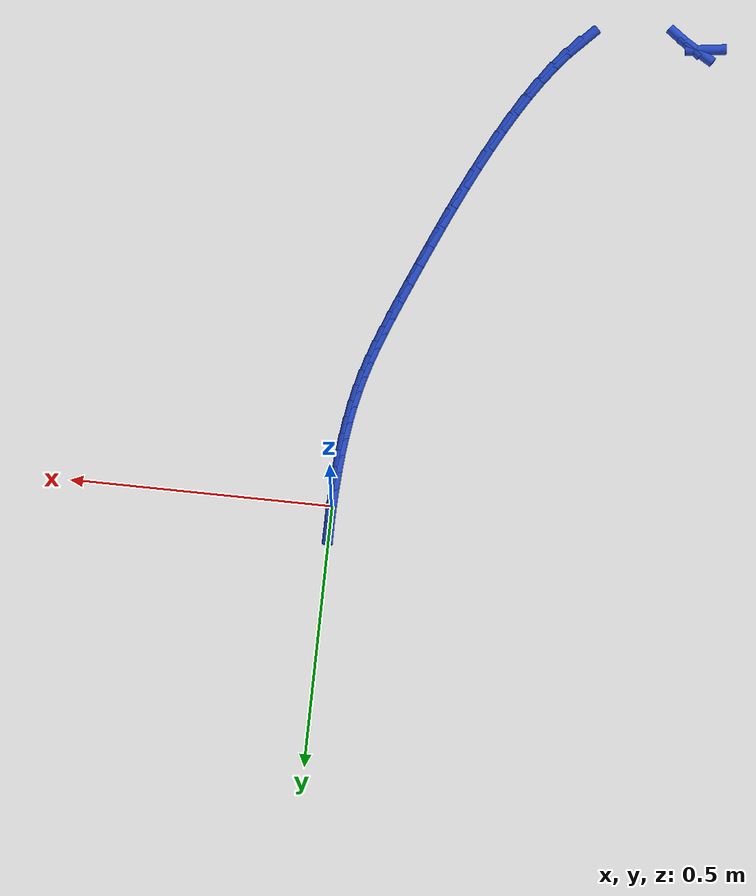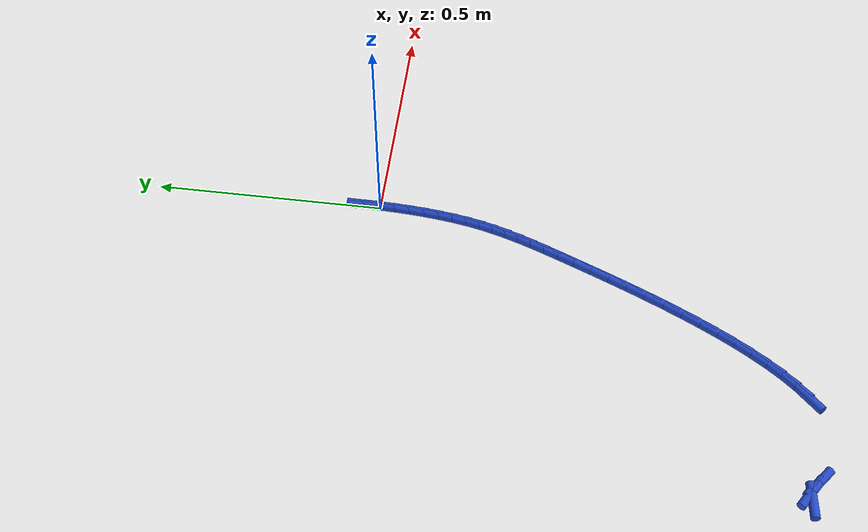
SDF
<sdf version="1.6">
 <world name="default">
  <model name="ground_plane">
   <static>1</static>
   <link name="link">
    <collision name="collision">
     <geometry><plane><normal>0 0 1</normal><size>100 100</size></plane></geometry>
     <surface><friction><ode><mu>100</mu><mu2>50</mu2></ode></friction></surface>
    </collision>
    <visual name="visual">
     <cast_shadows>0</cast_shadows>
     <geometry><plane><normal>0 0 1</normal><size>100 100</size></plane></geometry>
     <material>
      <script><uri>file://media/materials/scripts/gazebo.material</uri><name>Gazebo/WhiteGlow</name></script>
     </material>
    </visual>
   </link>
  </model>
  <model name="line">
   <link name="link_0">
    <pose>1.235990476633475e-17 6.938893903907228e-18 0.01 0 1.57 1.551171757758314</pose>
    <collision name="collision">
     <geometry><cylinder><radius>0.01</radius><length>0.08</length></cylinder></geometry>
    </collision>
    <visual name="visual">
     <material>
      <script><name>Gazebo/Blue</name><uri>file://media/materials/scripts/gazebo.material</uri></script>
     </material>
     <geometry><cylinder><radius>0.01</radius><length>0.08</length></cylinder></geometry>
    </visual>
   </link>
   <link name="link_1">
    <pose>0.0006745324023107896 0.034367420044899434 0.01 0 1.57 -1.5639240911768244</pose>
    <collision name="collision">
     <geometry><cylinder><radius>0.01</radius><length>0.08</length></cylinder></geometry>
    </collision>
    <visual name="visual">
     <material>
      <script><name>Gazebo/Blue</name><uri>file://media/materials/scripts/gazebo.material</uri></script>
     </material>
     <geometry><cylinder><radius>0.01</radius><length>0.08</length></cylinder></geometry>
    </visual>
   </link>
   <link name="link_242">
    <pose>-0.6226002115431525 -0.9555428469958014 0.01 0 1.57 0.13597110070251084</pose>
    <collision name="collision">
     <geometry><cylinder><radius>0.01</radius><length>0.08</length></cylinder></geometry>
    </collision>
    <visual name="visual">
     <material>
      <script><name>Gazebo/Blue</name><uri>file://media/materials/scripts/gazebo.material</uri></script>
     </material>
     <geometry><cylinder><radius>0.01</radius><length>0.08</length></cylinder></geometry>
    </visual>
   </link>
   <link name="link_243">
    <pose>-0.6044496044013559 -0.953059566321407 0.01 0 1.57 -0.5450933979554599</pose>
    <collision name="collision">
     <geometry><cylinder><radius>0.01</radius><length>0.08</length></cylinder></geometry>
    </collision>
    <visual name="visual">
     <material>
      <script><name>Gazebo/Blue</name><uri>file://media/materials/scripts/gazebo.material</uri></script>
     </material>
     <geometry><cylinder><radius>0.01</radius><length>0.08</length></cylinder></geometry>
    </visual>
   </link>
   <link name="link_244">
    <pose>-0.5818548450732716 -0.9667604504788027 0.01 0 1.57 -0.63791894159661</pose>
    <collision name="collision">
     <geometry><cylinder><radius>0.01</radius><length>0.08</length></cylinder></geometry>
    </collision>
    <visual name="visual">
     <material>
      <script><name>Gazebo/Blue</name><uri>file://media/materials/scripts/gazebo.material</uri></script>
     </material>
     <geometry><cylinder><radius>0.01</radius><length>0.08</length></cylinder></geometry>
    </visual>
   </link>
   <link name="link_252">
    <pose>-0.38383424432784324 -0.946251941171328 0.01 0 1.57 0.8018744424700996</pose>
    <collision name="collision">
     <geometry><cylinder><radius>0.01</radius><length>0.08</length></cylinder></geometry>
    </collision>
    <visual name="visual">
     <material>
      <script><name>Gazebo/Blue</name><uri>file://media/materials/scripts/gazebo.material</uri></script>
     </material>
     <geometry><cylinder><radius>0.01</radius><length>0.08</length></cylinder></geometry>
    </visual>
   </link>
   <link name="link_253">
    <pose>-0.3600293582576907 -0.9216494087857838 0.01 0 1.57 0.8752785804712211</pose>
    <collision name="collision">
     <geometry><cylinder><radius>0.01</radius><length>0.08</length></cylinder></geometry>
    </collision>
    <visual name="visual">
     <material>
      <script><name>Gazebo/Blue</name><uri>file://media/materials/scripts/gazebo.material</uri></script>
     </material>
     <geometry><cylinder><radius>0.01</radius><length>0.08</length></cylinder></geometry>
    </visual>
   </link>
   <link name="link_254">
    <pose>-0.33659819152771825 -0.893576530976896 0.01 0 1.57 0.9340669873318262</pose>
    <collision name="collision">
     <geometry><cylinder><radius>0.01</radius><length>0.08</length></cylinder></geometry>
    </collision>
    <visual name="visual">
     <material>
      <script><name>Gazebo/Blue</name><uri>file://media/materials/scripts/gazebo.material</uri></script>
     </material>
     <geometry><cylinder><radius>0.01</radius><length>0.08</length></cylinder></geometry>
    </visual>
   </link>
   <link name="link_255">
    <pose>-0.31358963423984176 -0.8624617026878789 0.01 0 1.57 0.9817380258848939</pose>
    <collision name="collision">
     <geometry><cylinder><radius>0.01</radius><length>0.08</length></cylinder></geometry>
    </collision>
    <visual name="visual">
     <material>
      <script><name>Gazebo/Blue</name><uri>file://media/materials/scripts/gazebo.material</uri></script>
     </material>
     <geometry><cylinder><radius>0.01</radius><length>0.08</length></cylinder></geometry>
    </visual>
   </link>
   <link name="link_256">
    <pose>-0.29105257649597743 -0.8287333188619468 0.01 0 1.57 1.0208390939373113</pose>
    <collision name="collision">
     <geometry><cylinder><radius>0.01</radius><length>0.08</length></cylinder></geometry>
    </collision>
    <visual name="visual">
     <material>
      <script><name>Gazebo/Blue</name><uri>file://media/materials/scripts/gazebo.material</uri></script>
     </material>
     <geometry><cylinder><radius>0.01</radius><length>0.08</length></cylinder></geometry>
    </visual>
   </link>
   <link name="link_257">
    <pose>-0.2690359083980413 -0.7928197744423142 0.01 0 1.57 1.053222602002199</pose>
    <collision name="collision">
     <geometry><cylinder><radius>0.01</radius><length>0.08</length></cylinder></geometry>
    </collision>
    <visual name="visual">
     <material>
      <script><name>Gazebo/Blue</name><uri>file://media/materials/scripts/gazebo.material</uri></script>
     </material>
     <geometry><cylinder><radius>0.01</radius><length>0.08</length></cylinder></geometry>
    </visual>
   </link>
   <link name="link_258">
    <pose>-0.24758852004794946 -0.7551494643721954 0.01 0 1.57 1.080241843946709</pose>
    <collision name="collision">
     <geometry><cylinder><radius>0.01</radius><length>0.08</length></cylinder></geometry>
    </collision>
    <visual name="visual">
     <material>
      <script><name>Gazebo/Blue</name><uri>file://media/materials/scripts/gazebo.material</uri></script>
     </material>
     <geometry><cylinder><radius>0.01</radius><length>0.08</length></cylinder></geometry>
    </visual>
   </link>
   <link name="link_259">
    <pose>-0.22675930154761792 -0.7161507835948052 0.01 0 1.57 1.1028904121422705</pose>
    <collision name="collision">
     <geometry><cylinder><radius>0.01</radius><length>0.08</length></cylinder></geometry>
    </collision>
    <visual name="visual">
     <material>
      <script><name>Gazebo/Blue</name><uri>file://media/materials/scripts/gazebo.material</uri></script>
     </material>
     <geometry><cylinder><radius>0.01</radius><length>0.08</length></cylinder></geometry>
    </visual>
   </link>
   <link name="link_260">
    <pose>-0.2065971429989627 -0.6762521270533575 0.01 0 1.57 1.1218983148085206</pose>
    <collision name="collision">
     <geometry><cylinder><radius>0.01</radius><length>0.08</length></cylinder></geometry>
    </collision>
    <visual name="visual">
     <material>
      <script><name>Gazebo/Blue</name><uri>file://media/materials/scripts/gazebo.material</uri></script>
     </material>
     <geometry><cylinder><radius>0.01</radius><length>0.08</length></cylinder></geometry>
    </visual>
   </link>
   <link name="link_261">
    <pose>-0.18715093450389939 -0.6358818896910655 0.01 0 1.57 1.1377967535812088</pose>
    <collision name="collision">
     <geometry><cylinder><radius>0.01</radius><length>0.08</length></cylinder></geometry>
    </collision>
    <visual name="visual">
     <material>
      <script><name>Gazebo/Blue</name><uri>file://media/materials/scripts/gazebo.material</uri></script>
     </material>
     <geometry><cylinder><radius>0.01</radius><length>0.08</length></cylinder></geometry>
    </visual>
   </link>
   <link name="link_262">
    <pose>-0.16846956616434516 -0.5954684664511465 0.01 0 1.57 1.1509601232739135</pose>
    <collision name="collision">
     <geometry><cylinder><radius>0.01</radius><length>0.08</length></cylinder></geometry>
    </collision>
    <visual name="visual">
     <material>
      <script><name>Gazebo/Blue</name><uri>file://media/materials/scripts/gazebo.material</uri></script>
     </material>
     <geometry><cylinder><radius>0.01</radius><length>0.08</length></cylinder></geometry>
    </visual>
   </link>
   <link name="link_263">
    <pose>-0.15060192808221542 -0.5554402522768129 0.01 0 1.57 1.1616304666371682</pose>
    <collision name="collision">
     <geometry><cylinder><radius>0.01</radius><length>0.08</length></cylinder></geometry>
    </collision>
    <visual name="visual">
     <material>
      <script><name>Gazebo/Blue</name><uri>file://media/materials/scripts/gazebo.material</uri></script>
     </material>
     <geometry><cylinder><radius>0.01</radius><length>0.08</length></cylinder></geometry>
    </visual>
   </link>
   <link name="link_264">
    <pose>-0.1335969103594264 -0.5162256421112801 0.01 0 1.57 1.1699265750323944</pose>
    <collision name="collision">
     <geometry><cylinder><radius>0.01</radius><length>0.08</length></cylinder></geometry>
    </collision>
    <visual name="visual">
     <material>
      <script><name>Gazebo/Blue</name><uri>file://media/materials/scripts/gazebo.material</uri></script>
     </material>
     <geometry><cylinder><radius>0.01</radius><length>0.08</length></cylinder></geometry>
    </visual>
   </link>
   <link name="link_265">
    <pose>-0.11750340309789395 -0.47825303089776167 0.01 0 1.57 1.1758366267844107</pose>
    <collision name="collision">
     <geometry><cylinder><radius>0.01</radius><length>0.08</length></cylinder></geometry>
    </collision>
    <visual name="visual">
     <material>
      <script><name>Gazebo/Blue</name><uri>file://media/materials/scripts/gazebo.material</uri></script>
     </material>
     <geometry><cylinder><radius>0.01</radius><length>0.08</length></cylinder></geometry>
    </visual>
   </link>
   <link name="link_266">
    <pose>-0.10237029639953431 -0.44195081357947247 0.01 0 1.57 1.1798074189993066</pose>
    <collision name="collision">
     <geometry><cylinder><radius>0.01</radius><length>0.08</length></cylinder></geometry>
    </collision>
    <visual name="visual">
     <material>
      <script><name>Gazebo/Blue</name><uri>file://media/materials/scripts/gazebo.material</uri></script>
     </material>
     <geometry><cylinder><radius>0.01</radius><length>0.08</length></cylinder></geometry>
    </visual>
   </link>
   <link name="link_267">
    <pose>-0.0882441853235032 -0.40768171869830205 0.01 0 1.57 1.1868907585496071</pose>
    <collision name="collision">
     <geometry><cylinder><radius>0.01</radius><length>0.08</length></cylinder></geometry>
    </collision>
    <visual name="visual">
     <material>
      <script><name>Gazebo/Blue</name><uri>file://media/materials/scripts/gazebo.material</uri></script>
     </material>
     <geometry><cylinder><radius>0.01</radius><length>0.08</length></cylinder></geometry>
    </visual>
   </link>
   <link name="link_268">
    <pose>-0.07515297055383963 -0.3752735861394914 0.01 0 1.57 1.2001918719360223</pose>
    <collision name="collision">
     <geometry><cylinder><radius>0.01</radius><length>0.08</length></cylinder></geometry>
    </collision>
    <visual name="visual">
     <material>
      <script><name>Gazebo/Blue</name><uri>file://media/materials/scripts/gazebo.material</uri></script>
     </material>
     <geometry><cylinder><radius>0.01</radius><length>0.08</length></cylinder></geometry>
    </visual>
   </link>
   <link name="link_269">
    <pose>-0.06311544441052154 -0.344293644744247 0.01 0 1.57 1.2202295780142103</pose>
    <collision name="collision">
     <geometry><cylinder><radius>0.01</radius><length>0.08</length></cylinder></geometry>
    </collision>
    <visual name="visual">
     <material>
      <script><name>Gazebo/Blue</name><uri>file://media/materials/scripts/gazebo.material</uri></script>
     </material>
     <geometry><cylinder><radius>0.01</radius><length>0.08</length></cylinder></geometry>
    </visual>
   </link>
   <link name="link_270">
    <pose>-0.05215033808180758 -0.3143073742360384 0.01 0 1.57 1.247061714537774</pose>
    <collision name="collision">
     <geometry><cylinder><radius>0.01</radius><length>0.08</length></cylinder></geometry>
    </collision>
    <visual name="visual">
     <material>
      <script><name>Gazebo/Blue</name><uri>file://media/materials/scripts/gazebo.material</uri></script>
     </material>
     <geometry><cylinder><radius>0.01</radius><length>0.08</length></cylinder></geometry>
    </visual>
   </link>
   <link name="link_271">
    <pose>-0.042276382755957305 -0.2848802543383373 0.01 0 1.57 1.28017486894412</pose>
    <collision name="collision">
     <geometry><cylinder><radius>0.01</radius><length>0.08</length></cylinder></geometry>
    </collision>
    <visual name="visual">
     <material>
      <script><name>Gazebo/Blue</name><uri>file://media/materials/scripts/gazebo.material</uri></script>
     </material>
     <geometry><cylinder><radius>0.01</radius><length>0.08</length></cylinder></geometry>
    </visual>
   </link>
   <link name="link_272">
    <pose>-0.033512309621229315 -0.255577764774613 0.01 0 1.57 1.3184461060420327</pose>
    <collision name="collision">
     <geometry><cylinder><radius>0.01</radius><length>0.08</length></cylinder></geometry>
    </collision>
    <visual name="visual">
     <material>
      <script><name>Gazebo/Blue</name><uri>file://media/materials/scripts/gazebo.material</uri></script>
     </material>
     <geometry><cylinder><radius>0.01</radius><length>0.08</length></cylinder></geometry>
    </visual>
   </link>
   <link name="link_273">
    <pose>-0.025876849865882543 -0.22596538526833568 0.01 0 1.57 1.3594805649179131</pose>
    <collision name="collision">
     <geometry><cylinder><radius>0.01</radius><length>0.08</length></cylinder></geometry>
    </collision>
    <visual name="visual">
     <material>
      <script><name>Gazebo/Blue</name><uri>file://media/materials/scripts/gazebo.material</uri></script>
     </material>
     <geometry><cylinder><radius>0.01</radius><length>0.08</length></cylinder></geometry>
    </visual>
   </link>
   <link name="link_274">
    <pose>-0.019376833864580625 -0.19566487499398835 0.01 0 1.57 1.3978101671131224</pose>
    <collision name="collision">
     <geometry><cylinder><radius>0.01</radius><length>0.08</length></cylinder></geometry>
    </collision>
    <visual name="visual">
     <material>
      <script><name>Gazebo/Blue</name><uri>file://media/materials/scripts/gazebo.material</uri></script>
     </material>
     <geometry><cylinder><radius>0.01</radius><length>0.08</length></cylinder></geometry>
    </visual>
   </link>
   <link name="link_275">
    <pose>-0.013951703040663323 -0.164616678328076 0.01 0 1.57 1.431996326054393</pose>
    <collision name="collision">
     <geometry><cylinder><radius>0.01</radius><length>0.08</length></cylinder></geometry>
    </collision>
    <visual name="visual">
     <material>
      <script><name>Gazebo/Blue</name><uri>file://media/materials/scripts/gazebo.material</uri></script>
     </material>
     <geometry><cylinder><radius>0.01</radius><length>0.08</length></cylinder></geometry>
    </visual>
   </link>
   <link name="link_276">
    <pose>-0.009517205834475871 -0.13287328476612958 0.01 0 1.57 1.4622838553723225</pose>
    <collision name="collision">
     <geometry><cylinder><radius>0.01</radius><length>0.08</length></cylinder></geometry>
    </collision>
    <visual name="visual">
     <material>
      <script><name>Gazebo/Blue</name><uri>file://media/materials/scripts/gazebo.material</uri></script>
     </material>
     <geometry><cylinder><radius>0.01</radius><length>0.08</length></cylinder></geometry>
    </visual>
   </link>
   <link name="link_277">
    <pose>-0.005989064586667043 -0.10048730723024908 0.01 0 1.57 1.4889180740752574</pose>
    <collision name="collision">
     <geometry><cylinder><radius>0.01</radius><length>0.08</length></cylinder></geometry>
    </collision>
    <visual name="visual">
     <material>
      <script><name>Gazebo/Blue</name><uri>file://media/materials/scripts/gazebo.material</uri></script>
     </material>
     <geometry><cylinder><radius>0.01</radius><length>0.08</length></cylinder></geometry>
    </visual>
   </link>
   <link name="link_278">
    <pose>-0.0032830016378856087 -0.06751135864253427 0.01 0 1.57 1.5121329441230806</pose>
    <collision name="collision">
     <geometry><cylinder><radius>0.01</radius><length>0.08</length></cylinder></geometry>
    </collision>
    <visual name="visual">
     <material>
      <script><name>Gazebo/Blue</name><uri>file://media/materials/scripts/gazebo.material</uri></script>
     </material>
     <geometry><cylinder><radius>0.01</radius><length>0.08</length></cylinder></geometry>
    </visual>
   </link>
   <link name="link_279">
    <pose>-0.0013147393287802922 -0.03399805192508391 0.01 0 1.57 1.5321445668517333</pose>
    <collision name="collision">
     <geometry><cylinder><radius>0.01</radius><length>0.08</length></cylinder></geometry>
    </collision>
    <visual name="visual">
     <material>
      <script><name>Gazebo/Blue</name><uri>file://media/materials/scripts/gazebo.material</uri></script>
     </material>
     <geometry><cylinder><radius>0.01</radius><length>0.08</length></cylinder></geometry>
    </visual>
   </link>
   <link name="link_280">
    <pose>1.3335686721571705e-17 1.3877787807814457e-17 0.01 0 1.57 1.5491473709183547</pose>
    <collision name="collision">
     <geometry><cylinder><radius>0.01</radius><length>0.08</length></cylinder></geometry>
    </collision>
    <visual name="visual">
     <material>
      <script><name>Gazebo/Blue</name><uri>file://media/materials/scripts/gazebo.material</uri></script>
     </material>
     <geometry><cylinder><radius>0.01</radius><length>0.08</length></cylinder></geometry>
    </visual>
   </link>
   <link name="link_281">
    <pose>0.0007454940078066088 0.03443018421061873 0.01 0 1.57 1.5633121641862944</pose>
    <collision name="collision">
     <geometry><cylinder><radius>0.01</radius><length>0.08</length></cylinder></geometry>
    </collision>
    <visual name="visual">
     <material>
      <script><name>Gazebo/Blue</name><uri>file://media/materials/scripts/gazebo.material</uri></script>
     </material>
     <geometry><cylinder><radius>0.01</radius><length>0.08</length></cylinder></geometry>
    </visual>
   </link>
  </model>
 </world>
</sdf>
